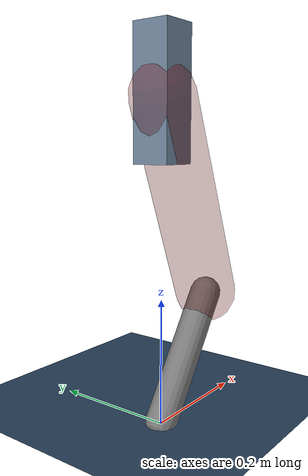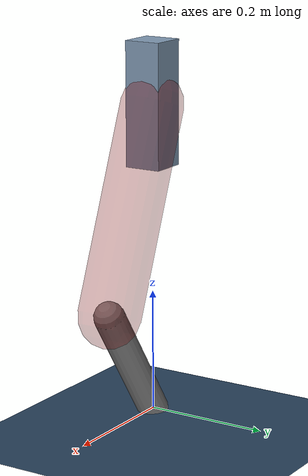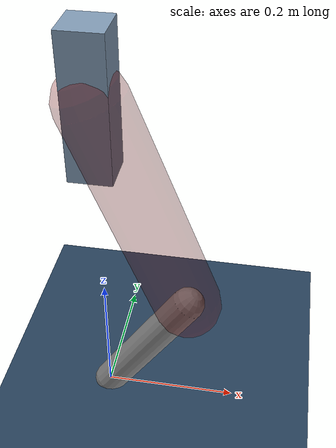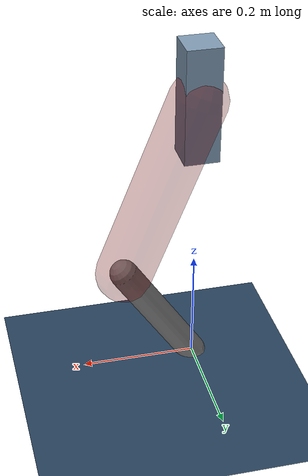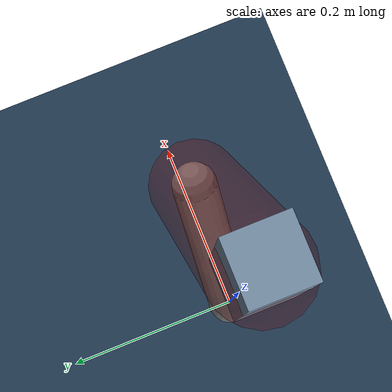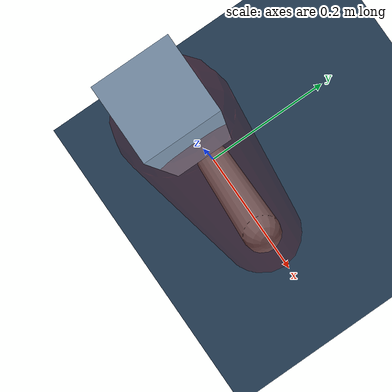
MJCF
<mujoco model="Hopper2D">
	<compiler inertiafromgeom="true" angle="radian" />
	<option timestep="0.001" integrator="implicit" cone="elliptic" solver="Newton" tolerance="1e-10" />

	<default>
		<geom contype="1" conaffinity="1" condim="3" friction="2 0.005 0.0001" solref="0.005 1" />
		<joint limited="true" damping="0.1" />
	</default>

	<asset>
		<texture name="skybox" type="skybox" builtin="gradient" rgb1=".4 .6 .8" rgb2="0 0 0" width="800" height="800" />
		<texture name="grid" type="2d" builtin="checker" rgb1=".1 .2 .3" rgb2=".2 .3 .4" width="300" height="300" mark="edge" markrgb=".2 .3 .4" />
		<material name="ground" texture="grid" texrepeat="1 1" texuniform="true" reflectance="0.1" />
		<material name="leg" rgba="0.5 0.6 0.7 1" />
	</asset>

	<worldbody>

		<geom name="floor" type="plane" size="5 5 0.25" material="ground" />

		<light directional="false" diffuse="0.8 0.8 0.8" specular="0.3 0.3 0.3" pos="0 0 2" dir="0 0 -1" />
		<light mode="targetbodycom" target="base" directional="false" diffuse="0.8 0.8 0.8" specular="0.3 0.3 0.3" pos="0 0 2" dir="0 0 -1" />

		<camera name="fixed" pos="0 -2 1" xyaxes="1 0 0 0 0 1" />
		<camera name="tracking" mode="trackcom" pos="0 -3 1" />

		<body name="root" pos="0 0 0.5055315214152103">
			<joint name="slide_x" type="slide" axis="1 0 0" range="-100 100" />
			<joint name="slide_z" type="slide" axis="0 0 1" range="0 10" />

			<body name="base" pos="0 0 0">
				<geom name="torso" type="box" size="0.03 0.03 0.1" mass="2.909" material="leg" />

				<body name="link1" pos="0 0 0" euler="0 1.1932416744594923 0">
					<joint type="hinge" axis="0 -1 0" pos="0 0 0" name="hinge1" limited="true" range="-3.14 3.14" stiffness="0" damping="0.1" />
					<geom name="thigh" type="capsule" fromto="0 0 0 0.340809816773732 0 0" size="0.05" rgba="0.5 0 0 0.3" mass="1.1008865052890764" />

					<body name="link2" pos="0.340809816773732 0 0" euler="0 0.964904495893357 0">
						<joint type="hinge" axis="0 -1 0" pos="0 0 0" name="hinge2" limited="true" range="-3.14 3.14" stiffness="0" damping="0.1" />
						<geom name="shank" type="capsule" fromto="0 0 0 0.22672099044501073 0 0" size="0.025" mass="0.42327679235600857" />

					</body>
				</body>
			</body>
		</body>
	</worldbody>

	<actuator>
		<motor name="torque1" joint="hinge1" ctrlrange="-81.03968442245072 81.03968442245072" ctrllimited="true" gear="1" />
		<motor name="torque2" joint="hinge2" ctrlrange="-87.69908711984944 87.69908711984944" ctrllimited="true" gear="1" />
	</actuator>
</mujoco>
